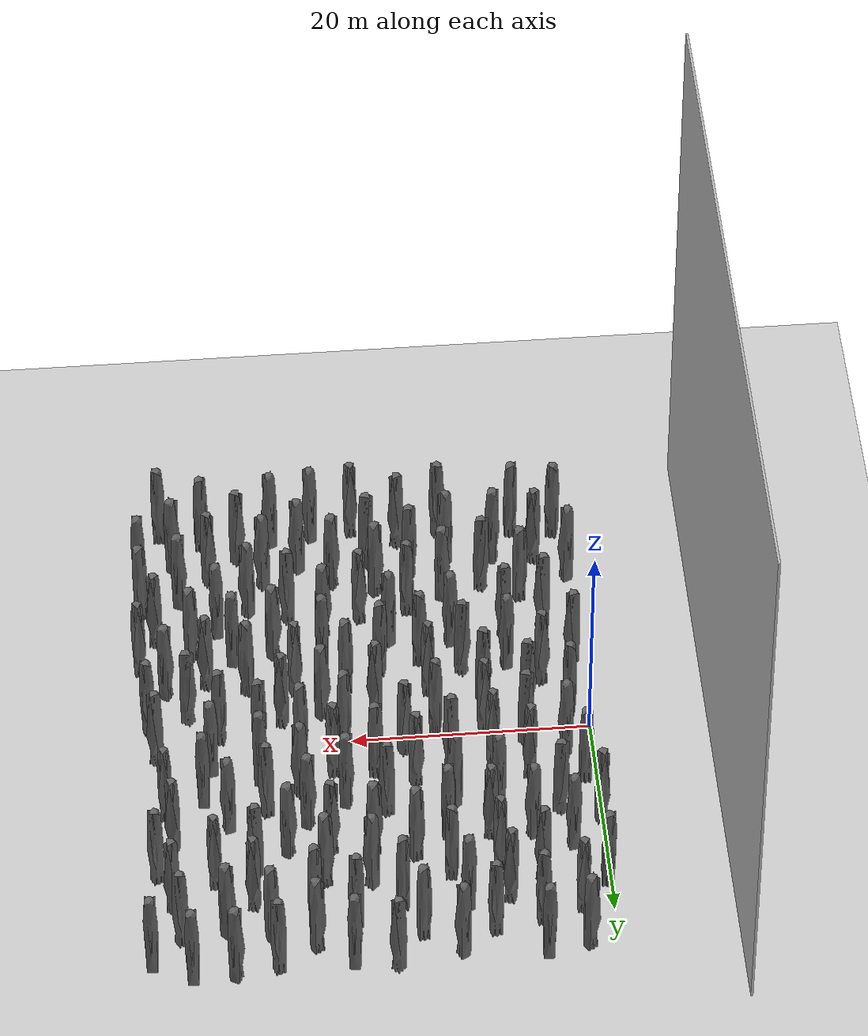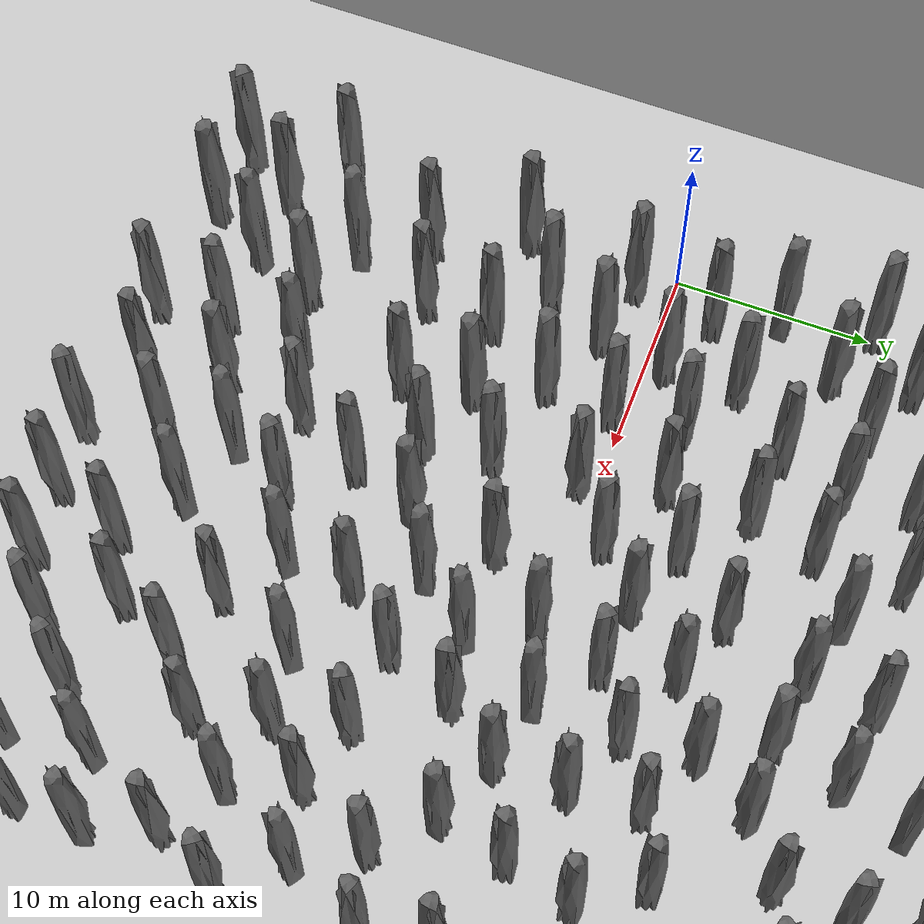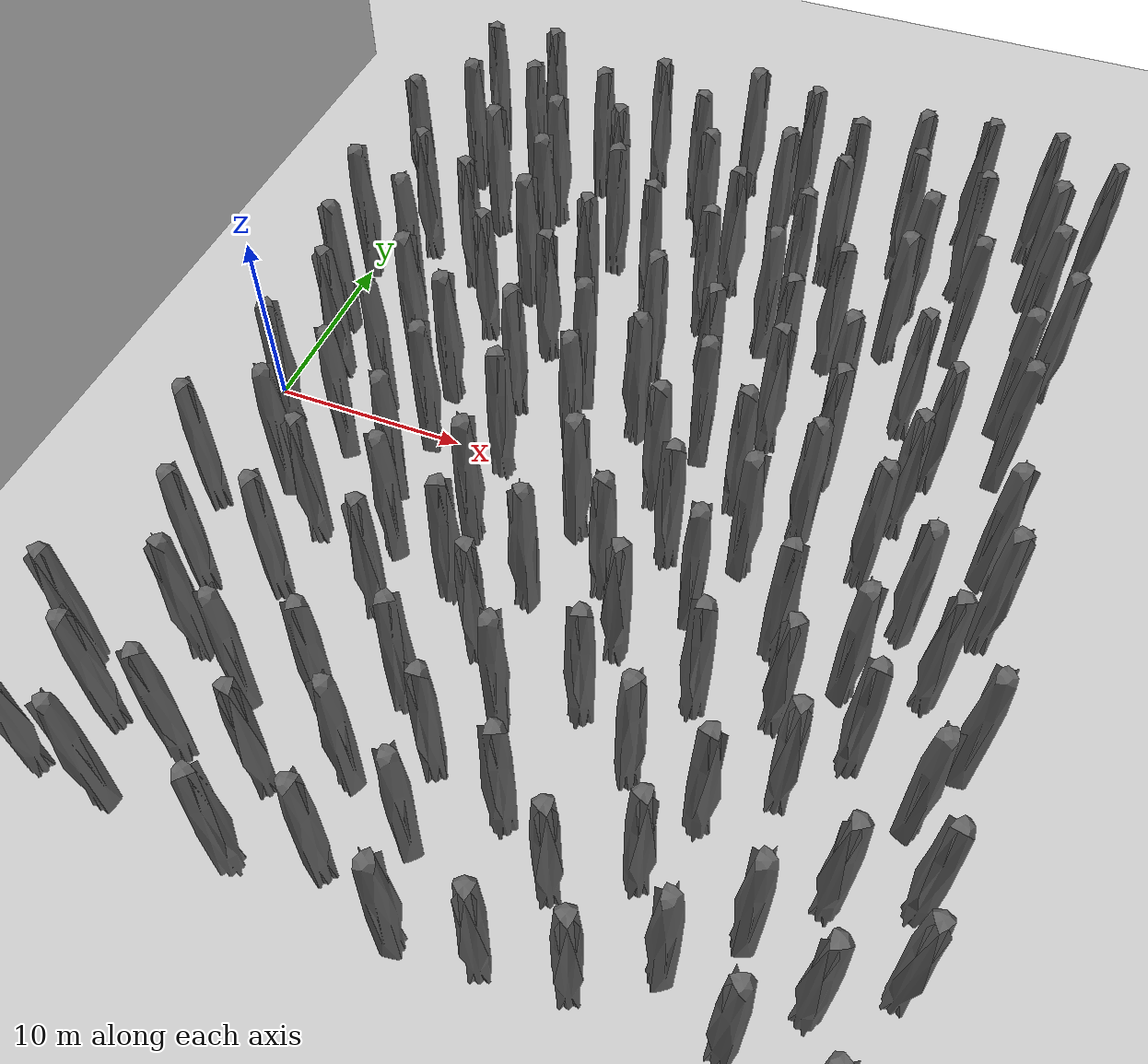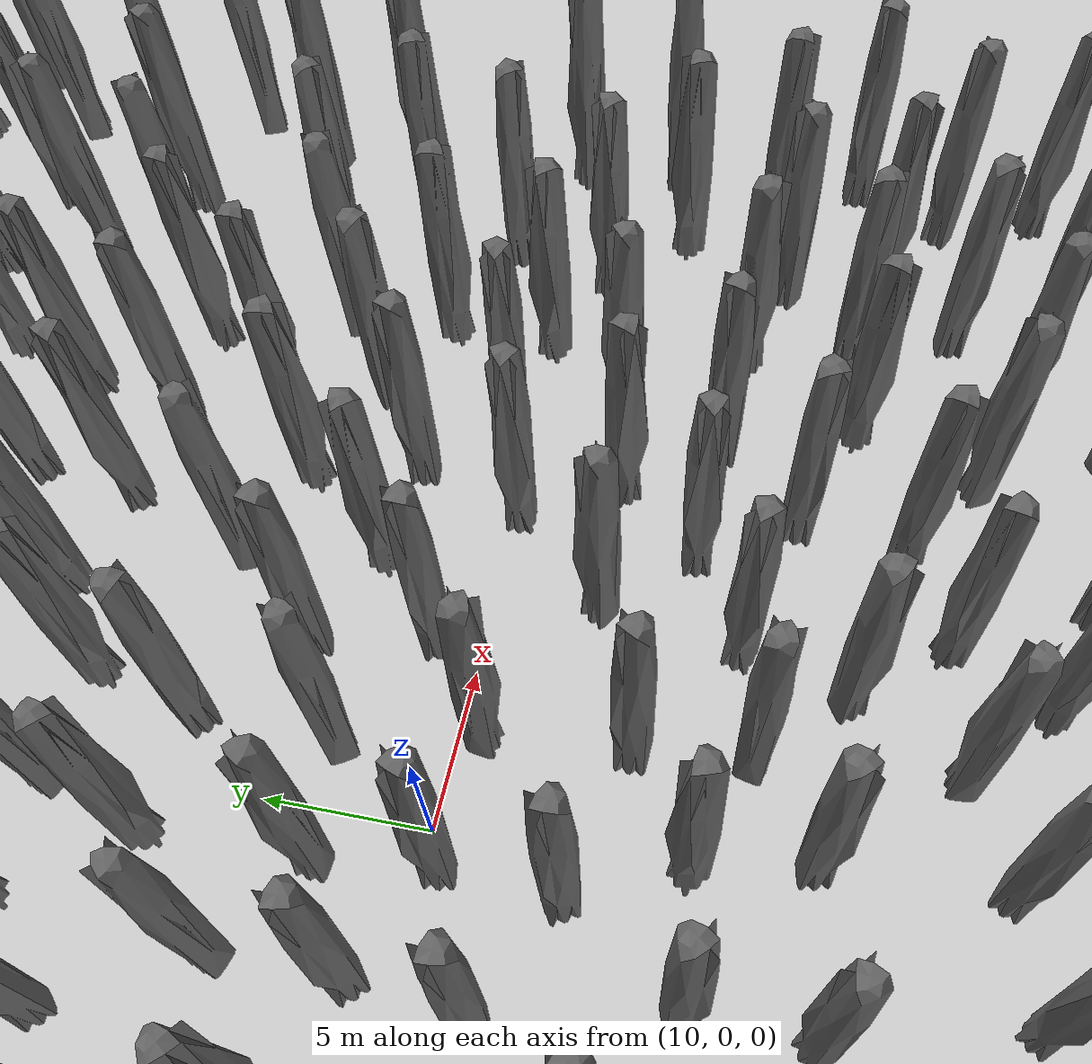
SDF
<sdf version="1.4">
 <world name="default">
  <model name="ground_plane">
   <static>1</static>
   <link name="link">
    <collision name="collision">
     <geometry><plane><normal>0 0 1</normal><size>1000 1000</size></plane></geometry>
     <surface>
      <contact><collide_bitmask>65535</collide_bitmask></contact>
      <friction><ode><mu>100</mu><mu2>50</mu2></ode></friction>
     </surface>
    </collision>
    <visual name="visual">
     <cast_shadows>0</cast_shadows>
     <geometry><plane><normal>0 0 1</normal><size>1000 1000</size></plane></geometry>
    </visual>
   </link>
  </model>
  <model name="wall_back">
   <static>1</static>
   <link name="link">
    <pose>0 0 25.0 0 0 0</pose>
    <collision name="collision"><geometry><box><size>60.0 0.2 50.0</size></box></geometry></collision>
    <visual name="visual">
     <cast_shadows>0</cast_shadows>
     <geometry><box><size>60.0 0.2 50.0</size></box></geometry>
    </visual>
   </link>
   <pose>-10.0 0.0 0 0 0 1.57</pose>
  </model>
  <include><uri>model://sun</uri></include>
  <include>
   <name>columnSimple Stone0</name>
   <uri>model://Simple Stone</uri>
   <pose>1.0462026596069336 -22.730745792388916 0 0 0 4.4146629534</pose>
   <static>true</static>
  </include>
  <include>
   <name>columnSimple Stone1</name>
   <uri>model://Simple Stone</uri>
   <pose>0.30914902687072754 -17.519710540771484 0 0 0 3.5306416816</pose>
   <static>true</static>
  </include>
  <include>
   <name>columnSimple Stone2</name>
   <uri>model://Simple Stone</uri>
   <pose>0.783991277217865 -7.634496688842773 0 0 0 5.46357495468</pose>
   <static>true</static>
  </include>
  <include>
   <name>columnSimple Stone3</name>
   <uri>model://Simple Stone</uri>
   <pose>1.6208568811416626 -1.7596874237060547 0 0 0 4.65796035632</pose>
   <static>true</static>
  </include>
  <include>
   <name>columnSimple Stone4</name>
   <uri>model://Simple Stone</uri>
   <pose>2.3136942386627197 2.485179901123047 0 0 0 3.37991423089</pose>
   <static>true</static>
  </include>
  <include>
   <name>columnSimple Stone5</name>
   <uri>model://Simple Stone</uri>
   <pose>0.9443089962005615 5.70997428894043 0 0 0 1.51393201042</pose>
   <static>true</static>
  </include>
  <include>
   <name>columnSimple Stone6</name>
   <uri>model://Simple Stone</uri>
   <pose>0.10889042913913727 10.307533264160156 0 0 0 0.198847092953</pose>
   <static>true</static>
  </include>
  <include>
   <name>columnSimple Stone7</name>
   <uri>model://Simple Stone</uri>
   <pose>0.25267258286476135 17.149715423583984 0 0 0 1.39650131874</pose>
   <static>true</static>
  </include>
  <include>
   <name>columnSimple Stone8</name>
   <uri>model://Simple Stone</uri>
   <pose>2.3559842109680176 23.64694595336914 0 0 0 2.1471608509</pose>
   <static>true</static>
  </include>
  <include>
   <name>columnSimple Stone9</name>
   <uri>model://Simple Stone</uri>
   <pose>4.5942702293396 -23.100603222846985 0 0 0 1.46757302774</pose>
   <static>true</static>
  </include>
  <include>
   <name>columnSimple Stone10</name>
   <uri>model://Simple Stone</uri>
   <pose>2.9678828716278076 -19.80129909515381 0 0 0 5.83823648447</pose>
   <static>true</static>
  </include>
  <include>
   <name>columnSimple Stone11</name>
   <uri>model://Simple Stone</uri>
   <pose>4.522773265838623 -15.402585983276367 0 0 0 1.80783151218</pose>
   <static>true</static>
  </include>
  <include>
   <name>columnSimple Stone12</name>
   <uri>model://Simple Stone</uri>
   <pose>2.8910322189331055 -12.123482704162598 0 0 0 5.43873633387</pose>
   <static>true</static>
  </include>
  <include>
   <name>columnSimple Stone13</name>
   <uri>model://Simple Stone</uri>
   <pose>3.5817759037017822 -5.525724411010742 0 0 0 0.398264676152</pose>
   <static>true</static>
  </include>
  <include>
   <name>columnSimple Stone14</name>
   <uri>model://Simple Stone</uri>
   <pose>3.3644511699676514 9.012989044189453 0 0 0 0.796075173932</pose>
   <static>true</static>
  </include>
  <include>
   <name>columnSimple Stone15</name>
   <uri>model://Simple Stone</uri>
   <pose>2.6949751377105713 12.872047424316406 0 0 0 3.30493265749</pose>
   <static>true</static>
  </include>
  <include>
   <name>columnSimple Stone16</name>
   <uri>model://Simple Stone</uri>
   <pose>2.595851421356201 19.754329681396484 0 0 0 6.24924508307</pose>
   <static>true</static>
  </include>
  <include>
   <name>columnSimple Stone17</name>
   <uri>model://Simple Stone</uri>
   <pose>6.455692291259766 -20.132503032684326 0 0 0 2.79037931033</pose>
   <static>true</static>
  </include>
  <include>
   <name>columnSimple Stone18</name>
   <uri>model://Simple Stone</uri>
   <pose>6.262237548828125 -11.16981315612793 0 0 0 5.3435918842</pose>
   <static>true</static>
  </include>
  <include>
   <name>columnSimple Stone19</name>
   <uri>model://Simple Stone</uri>
   <pose>6.3543572425842285 -7.667524337768555 0 0 0 3.3845438595</pose>
   <static>true</static>
  </include>
  <include>
   <name>columnSimple Stone20</name>
   <uri>model://Simple Stone</uri>
   <pose>5.073309421539307 -2.3555774688720703 0 0 0 0.703543310755</pose>
   <static>true</static>
  </include>
  <include>
   <name>columnSimple Stone21</name>
   <uri>model://Simple Stone</uri>
   <pose>5.538933753967285 1.1168441772460938 0 0 0 0.759909699516</pose>
   <static>true</static>
  </include>
  <include>
   <name>columnSimple Stone22</name>
   <uri>model://Simple Stone</uri>
   <pose>5.5469889640808105 4.909540176391602 0 0 0 6.00317290985</pose>
   <static>true</static>
  </include>
  <include>
   <name>columnSimple Stone23</name>
   <uri>model://Simple Stone</uri>
   <pose>5.892022132873535 11.439075469970703 0 0 0 3.54352475821</pose>
   <static>true</static>
  </include>
  <include>
   <name>columnSimple Stone24</name>
   <uri>model://Simple Stone</uri>
   <pose>5.534475803375244 16.17438507080078 0 0 0 5.63704741214</pose>
   <static>true</static>
  </include>
  <include>
   <name>columnSimple Stone25</name>
   <uri>model://Simple Stone</uri>
   <pose>5.938464641571045 20.803829193115234 0 0 0 4.81458306014</pose>
   <static>true</static>
  </include>
  <include>
   <name>columnSimple Stone26</name>
   <uri>model://Simple Stone</uri>
   <pose>5.79722785949707 24.304481506347656 0 0 0 3.0587411159</pose>
   <static>true</static>
  </include>
  <include>
   <name>columnSimple Stone27</name>
   <uri>model://Simple Stone</uri>
   <pose>7.708458423614502 -16.860639572143555 0 0 0 0.971522612584</pose>
   <static>true</static>
  </include>
  <include>
   <name>columnSimple Stone28</name>
   <uri>model://Simple Stone</uri>
   <pose>8.647517204284668 -3.9687862396240234 0 0 0 0.554188840752</pose>
   <static>true</static>
  </include>
  <include>
   <name>columnSimple Stone29</name>
   <uri>model://Simple Stone</uri>
   <pose>8.889117240905762 -0.47362709045410156 0 0 0 0.173950056644</pose>
   <static>true</static>
  </include>
  <include>
   <name>columnSimple Stone30</name>
   <uri>model://Simple Stone</uri>
   <pose>8.488860130310059 3.0069351196289062 0 0 0 6.22546502617</pose>
   <static>true</static>
  </include>
  <include>
   <name>columnSimple Stone31</name>
   <uri>model://Simple Stone</uri>
   <pose>8.416356086730957 7.898067474365234 0 0 0 3.40323623613</pose>
   <static>true</static>
  </include>
  <include>
   <name>columnSimple Stone32</name>
   <uri>model://Simple Stone</uri>
   <pose>9.391106605529785 11.263236999511719 0 0 0 5.96291577524</pose>
   <static>true</static>
  </include>
  <include>
   <name>columnSimple Stone33</name>
   <uri>model://Simple Stone</uri>
   <pose>8.912917137145996 14.733951568603516 0 0 0 0.0552614805125</pose>
   <static>true</static>
  </include>
  <include>
   <name>columnSimple Stone34</name>
   <uri>model://Simple Stone</uri>
   <pose>8.348711967468262 18.261150360107422 0 0 0 5.93929085326</pose>
   <static>true</static>
  </include>
  <include>
   <name>columnSimple Stone35</name>
   <uri>model://Simple Stone</uri>
   <pose>9.865998268127441 21.615882873535156 0 0 0 4.93989365077</pose>
   <static>true</static>
  </include>
  <include>
   <name>columnSimple Stone36</name>
   <uri>model://Simple Stone</uri>
   <pose>10.938824653625488 -23.633641362190247 0 0 0 5.01546816684</pose>
   <static>true</static>
  </include>
  <include>
   <name>columnSimple Stone37</name>
   <uri>model://Simple Stone</uri>
   <pose>10.525093078613281 -20.154655933380127 0 0 0 3.9566194207</pose>
   <static>true</static>
  </include>
  <include>
   <name>columnSimple Stone38</name>
   <uri>model://Simple Stone</uri>
   <pose>11.110724449157715 -16.024517059326172 0 0 0 2.67272051891</pose>
   <static>true</static>
  </include>
  <include>
   <name>columnSimple Stone39</name>
   <uri>model://Simple Stone</uri>
   <pose>10.881479263305664 -10.656991958618164 0 0 0 3.35556749192</pose>
   <static>true</static>
  </include>
  <include>
   <name>columnSimple Stone40</name>
   <uri>model://Simple Stone</uri>
   <pose>10.165589332580566 -7.227413177490234 0 0 0 0.8632253688</pose>
   <static>true</static>
  </include>
  <include>
   <name>columnSimple Stone41</name>
   <uri>model://Simple Stone</uri>
   <pose>11.979293823242188 3.3092422485351562 0 0 0 5.27727057973</pose>
   <static>true</static>
  </include>
  <include>
   <name>columnSimple Stone42</name>
   <uri>model://Simple Stone</uri>
   <pose>12.019346237182617 7.581478118896484 0 0 0 3.92051992383</pose>
   <static>true</static>
  </include>
  <include>
   <name>columnSimple Stone43</name>
   <uri>model://Simple Stone</uri>
   <pose>11.823323249816895 18.710132598876953 0 0 0 3.27236685744</pose>
   <static>true</static>
  </include>
  <include>
   <name>columnSimple Stone44</name>
   <uri>model://Simple Stone</uri>
   <pose>14.533437728881836 -22.622294664382935 0 0 0 5.63607841742</pose>
   <static>true</static>
  </include>
  <include>
   <name>columnSimple Stone45</name>
   <uri>model://Simple Stone</uri>
   <pose>13.716784477233887 -18.70979595184326 0 0 0 1.17201294825</pose>
   <static>true</static>
  </include>
  <include>
   <name>columnSimple Stone46</name>
   <uri>model://Simple Stone</uri>
   <pose>14.275704383850098 -14.522047996520996 0 0 0 4.79375452576</pose>
   <static>true</static>
  </include>
  <include>
   <name>columnSimple Stone47</name>
   <uri>model://Simple Stone</uri>
   <pose>13.669781684875488 -8.535699844360352 0 0 0 4.4865133242</pose>
   <static>true</static>
  </include>
  <include>
   <name>columnSimple Stone48</name>
   <uri>model://Simple Stone</uri>
   <pose>13.221892356872559 -5.060945510864258 0 0 0 0.0317003491285</pose>
   <static>true</static>
  </include>
  <include>
   <name>columnSimple Stone49</name>
   <uri>model://Simple Stone</uri>
   <pose>12.964982032775879 -0.7832012176513672 0 0 0 4.55799901794</pose>
   <static>true</static>
  </include>
  <include>
   <name>columnSimple Stone50</name>
   <uri>model://Simple Stone</uri>
   <pose>12.882884979248047 10.976886749267578 0 0 0 3.12078910692</pose>
   <static>true</static>
  </include>
  <include>
   <name>columnSimple Stone51</name>
   <uri>model://Simple Stone</uri>
   <pose>12.961287498474121 15.396591186523438 0 0 0 4.60879394383</pose>
   <static>true</static>
  </include>
  <include>
   <name>columnSimple Stone52</name>
   <uri>model://Simple Stone</uri>
   <pose>12.698456764221191 23.677845001220703 0 0 0 3.62893620287</pose>
   <static>true</static>
  </include>
  <include>
   <name>columnSimple Stone53</name>
   <uri>model://Simple Stone</uri>
   <pose>17.282934188842773 -20.45093870162964 0 0 0 0.766854103326</pose>
   <static>true</static>
  </include>
  <include>
   <name>columnSimple Stone54</name>
   <uri>model://Simple Stone</uri>
   <pose>16.766693115234375 -16.985681533813477 0 0 0 2.14793794819</pose>
   <static>true</static>
  </include>
  <include>
   <name>columnSimple Stone55</name>
   <uri>model://Simple Stone</uri>
   <pose>16.0833740234375 -11.075202941894531 0 0 0 3.70057810368</pose>
   <static>true</static>
  </include>
  <include>
   <name>columnSimple Stone56</name>
   <uri>model://Simple Stone</uri>
   <pose>17.067060470581055 -7.679542541503906 0 0 0 1.28931972771</pose>
   <static>true</static>
  </include>
  <include>
   <name>columnSimple Stone57</name>
   <uri>model://Simple Stone</uri>
   <pose>15.692901611328125 1.4151992797851562 0 0 0 0.475824100179</pose>
   <static>true</static>
  </include>
  <include>
   <name>columnSimple Stone58</name>
   <uri>model://Simple Stone</uri>
   <pose>15.027563095092773 5.036251068115234 0 0 0 0.327620145959</pose>
   <static>true</static>
  </include>
  <include>
   <name>columnSimple Stone59</name>
   <uri>model://Simple Stone</uri>
   <pose>15.64002799987793 13.138526916503906 0 0 0 1.88133317737</pose>
   <static>true</static>
  </include>
  <include>
   <name>columnSimple Stone60</name>
   <uri>model://Simple Stone</uri>
   <pose>17.118122100830078 18.358707427978516 0 0 0 1.4925790356</pose>
   <static>true</static>
  </include>
  <include>
   <name>columnSimple Stone61</name>
   <uri>model://Simple Stone</uri>
   <pose>15.704712867736816 21.564449310302734 0 0 0 1.70732780378</pose>
   <static>true</static>
  </include>
  <include>
   <name>columnSimple Stone62</name>
   <uri>model://Simple Stone</uri>
   <pose>18.400665283203125 -24.195822417736053 0 0 0 0.151028227302</pose>
   <static>true</static>
  </include>
  <include>
   <name>columnSimple Stone63</name>
   <uri>model://Simple Stone</uri>
   <pose>18.36069679260254 -13.865799903869629 0 0 0 0.298206791587</pose>
   <static>true</static>
  </include>
  <include>
   <name>columnSimple Stone64</name>
   <uri>model://Simple Stone</uri>
   <pose>17.8077335357666 -3.2069568634033203 0 0 0 5.74810203241</pose>
   <static>true</static>
  </include>
  <include>
   <name>columnSimple Stone65</name>
   <uri>model://Simple Stone</uri>
   <pose>18.292064666748047 3.764425277709961 0 0 0 1.23310236547</pose>
   <static>true</static>
  </include>
  <include>
   <name>columnSimple Stone66</name>
   <uri>model://Simple Stone</uri>
   <pose>17.66338539123535 8.097026824951172 0 0 0 5.17313183358</pose>
   <static>true</static>
  </include>
  <include>
   <name>columnSimple Stone67</name>
   <uri>model://Simple Stone</uri>
   <pose>19.047563552856445 12.324142456054688 0 0 0 2.09388034901</pose>
   <static>true</static>
  </include>
  <include>
   <name>columnSimple Stone68</name>
   <uri>model://Simple Stone</uri>
   <pose>19.508359909057617 15.797210693359375 0 0 0 3.89101479684</pose>
   <static>true</static>
  </include>
  <include>
   <name>columnSimple Stone69</name>
   <uri>model://Simple Stone</uri>
   <pose>18.01100730895996 24.74561309814453 0 0 0 5.47431136541</pose>
   <static>true</static>
  </include>
  <include>
   <name>columnSimple Stone70</name>
   <uri>model://Simple Stone</uri>
   <pose>21.8916072845459 -23.89945936203003 0 0 0 3.52805174572</pose>
   <static>true</static>
  </include>
  <include>
   <name>columnSimple Stone71</name>
   <uri>model://Simple Stone</uri>
   <pose>20.41253089904785 -18.17475128173828 0 0 0 2.54522566511</pose>
   <static>true</static>
  </include>
  <include>
   <name>columnSimple Stone72</name>
   <uri>model://Simple Stone</uri>
   <pose>21.533267974853516 -12.379423141479492 0 0 0 2.35533368917</pose>
   <static>true</static>
  </include>
  <include>
   <name>columnSimple Stone73</name>
   <uri>model://Simple Stone</uri>
   <pose>21.862817764282227 -8.891456604003906 0 0 0 3.07607872774</pose>
   <static>true</static>
  </include>
  <include>
   <name>columnSimple Stone74</name>
   <uri>model://Simple Stone</uri>
   <pose>20.072898864746094 -5.879695892333984 0 0 0 1.7447649857</pose>
   <static>true</static>
  </include>
  <include>
   <name>columnSimple Stone75</name>
   <uri>model://Simple Stone</uri>
   <pose>22.27275848388672 -3.152952194213867 0 0 0 2.22758771773</pose>
   <static>true</static>
  </include>
  <include>
   <name>columnSimple Stone76</name>
   <uri>model://Simple Stone</uri>
   <pose>20.598777770996094 -0.0752410888671875 0 0 0 1.61979107012</pose>
   <static>true</static>
  </include>
  <include>
   <name>columnSimple Stone77</name>
   <uri>model://Simple Stone</uri>
   <pose>21.781835556030273 3.454561233520508 0 0 0 0.141753833115</pose>
   <static>true</static>
  </include>
  <include>
   <name>columnSimple Stone78</name>
   <uri>model://Simple Stone</uri>
   <pose>20.9394474029541 6.855279922485352 0 0 0 2.7927572799</pose>
   <static>true</static>
  </include>
  <include>
   <name>columnSimple Stone79</name>
   <uri>model://Simple Stone</uri>
   <pose>21.05555534362793 19.982372283935547 0 0 0 5.0984161231</pose>
   <static>true</static>
  </include>
  <include>
   <name>columnSimple Stone80</name>
   <uri>model://Simple Stone</uri>
   <pose>21.46234130859375 24.14327621459961 0 0 0 2.92871563671</pose>
   <static>true</static>
  </include>
  <include>
   <name>columnSimple Stone81</name>
   <uri>model://Simple Stone</uri>
   <pose>23.24271011352539 -20.239840507507324 0 0 0 3.71315380573</pose>
   <static>true</static>
  </include>
  <include>
   <name>columnSimple Stone82</name>
   <uri>model://Simple Stone</uri>
   <pose>24.462350845336914 -14.391119956970215 0 0 0 5.22057693354</pose>
   <static>true</static>
  </include>
  <include>
   <name>columnSimple Stone83</name>
   <uri>model://Simple Stone</uri>
   <pose>24.355785369873047 -5.9699554443359375 0 0 0 0.202780017775</pose>
   <static>true</static>
  </include>
  <include>
   <name>columnSimple Stone84</name>
   <uri>model://Simple Stone</uri>
   <pose>24.311187744140625 1.0303325653076172 0 0 0 1.72018203353</pose>
   <static>true</static>
  </include>
  <include>
   <name>columnSimple Stone85</name>
   <uri>model://Simple Stone</uri>
   <pose>24.690040588378906 5.408237457275391 0 0 0 3.76666928643</pose>
   <static>true</static>
  </include>
  <include>
   <name>columnSimple Stone86</name>
   <uri>model://Simple Stone</uri>
   <pose>24.23767852783203 8.88241195678711 0 0 0 2.62429413506</pose>
   <static>true</static>
  </include>
  <include>
   <name>columnSimple Stone87</name>
   <uri>model://Simple Stone</uri>
   <pose>22.53011703491211 11.941619873046875 0 0 0 0.492992274274</pose>
   <static>true</static>
  </include>
  <include>
   <name>columnSimple Stone88</name>
   <uri>model://Simple Stone</uri>
   <pose>23.248401641845703 15.370697021484375 0 0 0 2.01495303768</pose>
   <static>true</static>
  </include>
  <include>
   <name>columnSimple Stone89</name>
   <uri>model://Simple Stone</uri>
   <pose>24.318574905395508 18.706748962402344 0 0 0 1.44571201663</pose>
   <static>true</static>
  </include>
  <include>
   <name>columnSimple Stone90</name>
   <uri>model://Simple Stone</uri>
   <pose>24.383909225463867 22.209640502929688 0 0 0 2.04946615942</pose>
   <static>true</static>
  </include>
  <include>
   <name>columnSimple Stone91</name>
   <uri>model://Simple Stone</uri>
   <pose>25.37706184387207 -23.54431664943695 0 0 0 3.58485957315</pose>
   <static>true</static>
  </include>
  <include>
   <name>columnSimple Stone92</name>
   <uri>model://Simple Stone</uri>
   <pose>26.334434509277344 -18.591885089874268 0 0 0 3.75061898004</pose>
   <static>true</static>
  </include>
  <include>
   <name>columnSimple Stone93</name>
   <uri>model://Simple Stone</uri>
   <pose>25.915790557861328 -10.325937271118164 0 0 0 2.27494426177</pose>
   <static>true</static>
  </include>
  <include>
   <name>columnSimple Stone94</name>
   <uri>model://Simple Stone</uri>
   <pose>25.703989028930664 -2.4450244903564453 0 0 0 5.9115108248</pose>
   <static>true</static>
  </include>
  <include>
   <name>columnSimple Stone95</name>
   <uri>model://Simple Stone</uri>
   <pose>26.059484481811523 11.874992370605469 0 0 0 2.49402140058</pose>
   <static>true</static>
  </include>
  <include>
   <name>columnSimple Stone96</name>
   <uri>model://Simple Stone</uri>
   <pose>28.32395362854004 -21.649497032165527 0 0 0 0.611124621366</pose>
   <static>true</static>
  </include>
  <include>
   <name>columnSimple Stone97</name>
   <uri>model://Simple Stone</uri>
   <pose>27.812734603881836 -15.415544509887695 0 0 0 3.94845614952</pose>
   <static>true</static>
  </include>
  <include>
   <name>columnSimple Stone98</name>
   <uri>model://Simple Stone</uri>
   <pose>29.377912521362305 -9.789072036743164 0 0 0 2.87413001109</pose>
   <static>true</static>
  </include>
  <include>
   <name>columnSimple Stone99</name>
   <uri>model://Simple Stone</uri>
   <pose>28.39769744873047 -6.3292083740234375 0 0 0 4.1487646418</pose>
   <static>true</static>
  </include>
  <include>
   <name>columnSimple Stone100</name>
   <uri>model://Simple Stone</uri>
   <pose>27.756473541259766 0.39430999755859375 0 0 0 1.16458085884</pose>
   <static>true</static>
  </include>
  <include>
   <name>columnSimple Stone101</name>
   <uri>model://Simple Stone</uri>
   <pose>27.858034133911133 3.8963375091552734 0 0 0 2.80479307321</pose>
   <static>true</static>
  </include>
  <include>
   <name>columnSimple Stone102</name>
   <uri>model://Simple Stone</uri>
   <pose>27.560762405395508 7.416587829589844 0 0 0 5.1131802263</pose>
   <static>true</static>
  </include>
  <include>
   <name>columnSimple Stone103</name>
   <uri>model://Simple Stone</uri>
   <pose>28.881521224975586 13.951194763183594 0 0 0 5.47148749758</pose>
   <static>true</static>
  </include>
  <include>
   <name>columnSimple Stone104</name>
   <uri>model://Simple Stone</uri>
   <pose>29.240747451782227 17.436229705810547 0 0 0 5.97372750078</pose>
   <static>true</static>
  </include>
  <include>
   <name>columnSimple Stone105</name>
   <uri>model://Simple Stone</uri>
   <pose>27.965465545654297 20.699382781982422 0 0 0 1.80887057821</pose>
   <static>true</static>
  </include>
  <include>
   <name>columnSimple Stone106</name>
   <uri>model://Simple Stone</uri>
   <pose>27.60706901550293 24.18450164794922 0 0 0 5.04874093941</pose>
   <static>true</static>
  </include>
  <include>
   <name>columnSimple Stone107</name>
   <uri>model://Simple Stone</uri>
   <pose>31.306835174560547 -23.520901083946228 0 0 0 1.33808407351</pose>
   <static>true</static>
  </include>
  <include>
   <name>columnSimple Stone108</name>
   <uri>model://Simple Stone</uri>
   <pose>30.90796661376953 -19.28361749649048 0 0 0 0.380010615359</pose>
   <static>true</static>
  </include>
  <include>
   <name>columnSimple Stone109</name>
   <uri>model://Simple Stone</uri>
   <pose>30.530338287353516 -13.204402923583984 0 0 0 3.28864584125</pose>
   <static>true</static>
  </include>
  <include>
   <name>columnSimple Stone110</name>
   <uri>model://Simple Stone</uri>
   <pose>31.780872344970703 -7.239503860473633 0 0 0 5.78659957424</pose>
   <static>true</static>
  </include>
  <include>
   <name>columnSimple Stone111</name>
   <uri>model://Simple Stone</uri>
   <pose>30.990989685058594 -0.9519500732421875 0 0 0 1.32287334019</pose>
   <static>true</static>
  </include>
  <include>
   <name>columnSimple Stone112</name>
   <uri>model://Simple Stone</uri>
   <pose>31.857574462890625 2.442686080932617 0 0 0 3.29930079192</pose>
   <static>true</static>
  </include>
  <include>
   <name>columnSimple Stone113</name>
   <uri>model://Simple Stone</uri>
   <pose>30.798049926757812 8.795673370361328 0 0 0 3.42305732376</pose>
   <static>true</static>
  </include>
  <include>
   <name>columnSimple Stone114</name>
   <uri>model://Simple Stone</uri>
   <pose>31.53342628479004 20.085407257080078 0 0 0 2.28715656803</pose>
   <static>true</static>
  </include>
  <include>
   <name>columnSimple Stone115</name>
   <uri>model://Simple Stone</uri>
   <pose>31.069046020507812 24.72229766845703 0 0 0 2.64687548135</pose>
   <static>true</static>
  </include>
  <include>
   <name>columnSimple Stone116</name>
   <uri>model://Simple Stone</uri>
   <pose>33.87833023071289 -21.14142394065857 0 0 0 2.57967396984</pose>
   <static>true</static>
  </include>
  <include>
   <name>columnSimple Stone117</name>
   <uri>model://Simple Stone</uri>
   <pose>33.53530502319336 -16.909096717834473 0 0 0 2.69572010357</pose>
   <static>true</static>
  </include>
  <include>
   <name>columnSimple Stone118</name>
   <uri>model://Simple Stone</uri>
   <pose>32.855133056640625 -10.583364486694336 0 0 0 1.95451872042</pose>
   <static>true</static>
  </include>
  <include>
   <name>columnSimple Stone119</name>
   <uri>model://Simple Stone</uri>
   <pose>33.489192962646484 -3.408266067504883 0 0 0 0.865260948439</pose>
   <static>true</static>
  </include>
  <include>
   <name>columnSimple Stone120</name>
   <uri>model://Simple Stone</uri>
   <pose>32.688777923583984 5.846155166625977 0 0 0 3.0371283588</pose>
   <static>true</static>
  </include>
  <include>
   <name>columnSimple Stone121</name>
   <uri>model://Simple Stone</uri>
   <pose>32.258872985839844 14.882865905761719 0 0 0 6.20990079465</pose>
   <static>true</static>
  </include>
  <include>
   <name>columnSimple Stone122</name>
   <uri>model://Simple Stone</uri>
   <pose>34.572540283203125 24.71692657470703 0 0 0 3.09465033473</pose>
   <static>true</static>
  </include>
  <include>
   <name>columnSimple Stone123</name>
   <uri>model://Simple Stone</uri>
   <pose>34.935001373291016 -24.80430494248867 0 0 0 4.63719087727</pose>
   <static>true</static>
  </include>
  <include>
   <name>columnSimple Stone124</name>
   <uri>model://Simple Stone</uri>
   <pose>36.86032485961914 -19.302338123321533 0 0 0 3.07502676526</pose>
   <static>true</static>
  </include>
  <include>
   <name>columnSimple Stone125</name>
   <uri>model://Simple Stone</uri>
   <pose>36.85823059082031 -15.79883861541748 0 0 0 1.88859640652</pose>
   <static>true</static>
  </include>
  <include>
   <name>columnSimple Stone126</name>
   <uri>model://Simple Stone</uri>
   <pose>35.81782150268555 -12.453385353088379 0 0 0 5.84040443378</pose>
   <static>true</static>
  </include>
  <include>
   <name>columnSimple Stone127</name>
   <uri>model://Simple Stone</uri>
   <pose>35.198081970214844 -6.466730117797852 0 0 0 2.58201771462</pose>
   <static>true</static>
  </include>
  <include>
   <name>columnSimple Stone128</name>
   <uri>model://Simple Stone</uri>
   <pose>36.8808708190918 -2.5301742553710938 0 0 0 4.89853816418</pose>
   <static>true</static>
  </include>
  <include>
   <name>columnSimple Stone129</name>
   <uri>model://Simple Stone</uri>
   <pose>36.39493942260742 0.9394626617431641 0 0 0 5.58127087693</pose>
   <static>true</static>
  </include>
  <include>
   <name>columnSimple Stone130</name>
   <uri>model://Simple Stone</uri>
   <pose>35.90882873535156 7.226661682128906 0 0 0 6.17019127141</pose>
   <static>true</static>
  </include>
  <include>
   <name>columnSimple Stone131</name>
   <uri>model://Simple Stone</uri>
   <pose>35.4495964050293 10.699932098388672 0 0 0 5.95476270355</pose>
   <static>true</static>
  </include>
  <include>
   <name>columnSimple Stone132</name>
   <uri>model://Simple Stone</uri>
   <pose>36.959022521972656 13.861602783203125 0 0 0 5.10811631094</pose>
   <static>true</static>
  </include>
  <include>
   <name>columnSimple Stone133</name>
   <uri>model://Simple Stone</uri>
   <pose>35.811065673828125 17.171695709228516 0 0 0 5.74561100927</pose>
   <static>true</static>
  </include>
  <include>
   <name>columnSimple Stone134</name>
   <uri>model://Simple Stone</uri>
   <pose>35.30015182495117 20.637741088867188 0 0 0 5.17845006456</pose>
   <static>true</static>
  </include>
  <include>
   <name>columnSimple Stone137</name>
   <uri>model://Simple Stone</uri>
   <pose>37.29243087768555 -9.275328636169434 0 0 0 0.100726884289</pose>
   <static>true</static>
  </include>
  <include>
   <name>columnSimple Stone143</name>
   <uri>model://Simple Stone</uri>
   <pose>37.780181884765625 23.112403869628906 0 0 0 3.02604420706</pose>
   <static>true</static>
  </include>
 </world>
</sdf>
